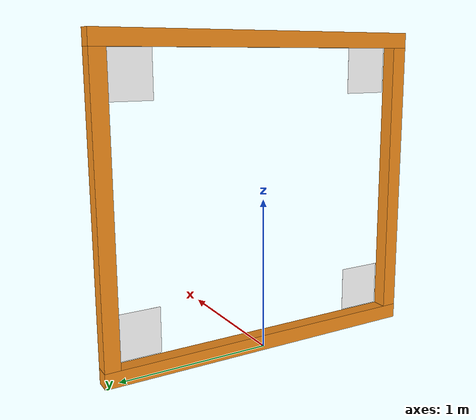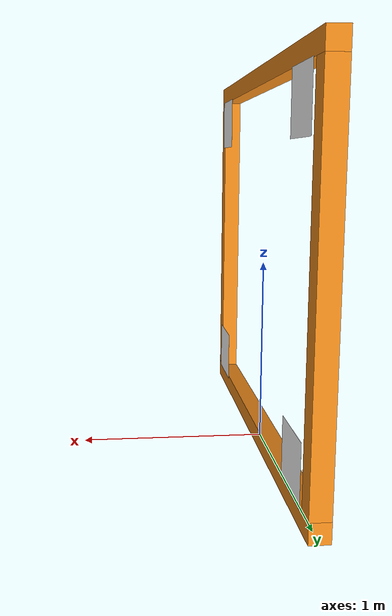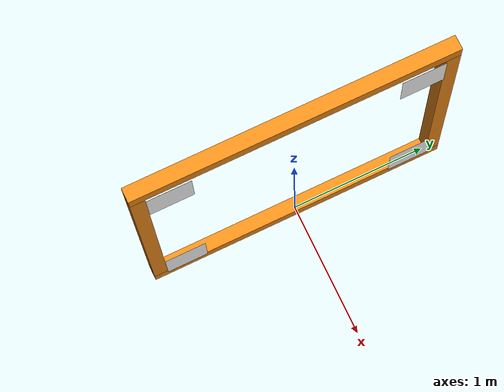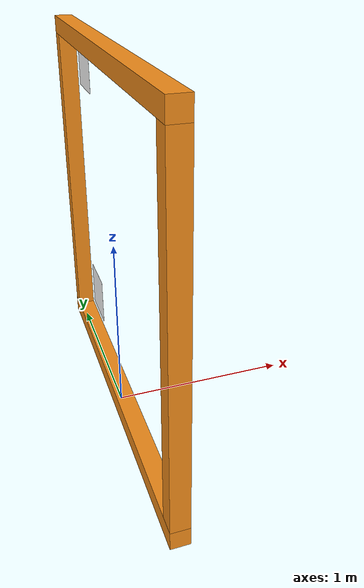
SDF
<?xml version="1.0" ?>
<sdf version="1.9">
<model name="aruco_gate">
<static>true</static>
<link name="link">
<visual name="visual_top">
<pose>0 0 2.0 0 0 0</pose>
<geometry>
<box>
<size>0.1 2.2 0.1</size> </box>
</geometry>
<material>
<script>
<name>Gazebo/Orange</name>
<uri>file://media/materials/scripts/gazebo.material</uri>
</script>
</material>
</visual>
<collision name="collision_top">
<pose>0 0 2.0 0 0 0</pose>
<geometry>
<box><size>0.1 2.2 0.1</size></box>
</geometry>
</collision>

<visual name="visual_bottom">
<pose>0 0 0.05 0 0 0</pose>
<geometry>
<box><size>0.1 2.2 0.1</size></box>
</geometry>
<material>
<script>
<name>Gazebo/Orange</name>
<uri>file://media/materials/scripts/gazebo.material</uri>
</script>
</material>
</visual>
<collision name="collision_bottom">
<pose>0 0 0.05 0 0 0</pose>
<geometry>
<box><size>0.1 2.2 0.1</size></box>
</geometry>
</collision>

<visual name="visual_left">
<pose>0 1.05 1.025 0 0 0</pose>
<geometry>
<box><size>0.1 0.1 1.85</size></box>
</geometry>
<material>
<script>
<name>Gazebo/Orange</name>
<uri>file://media/materials/scripts/gazebo.material</uri>
</script>
</material>
</visual>
<collision name="collision_left">
<pose>0 1.05 1.025 0 0 0</pose>
<geometry>
<box><size>0.1 0.1 1.85</size></box>
</geometry>
</collision>

<visual name="visual_right">
<pose>0 -1.05 1.025 0 0 0</pose>
<geometry>
<box><size>0.1 0.1 1.85</size></box>
</geometry>
<material>
<script>
<name>Gazebo/Orange</name>
<uri>file://media/materials/scripts/gazebo.material</uri>
</script>
</material>
</visual>
<collision name="collision_right">
<pose>0 -1.05 1.025 0 0 0</pose>
<geometry>
<box><size>0.1 0.1 1.85</size></box>
</geometry>
</collision>

<visual name="marker_TL">
<pose>0.06 0.85 1.8 0 -1.57 0</pose>
<geometry>
<plane>
<normal>0 0 1</normal>
<size>0.3 0.3</size>
</plane>
</geometry>
<material>
<diffuse>1 1 1 1</diffuse>
<specular>0.1 0.1 0.1 1</specular>
<double_sided>true</double_sided>
<pbr>
<metal>
<albedo_map>model://aruco_gate/materials/textures/aruco_marker_0.png</albedo_map>
</metal>
</pbr>
</material>
</visual>

<visual name="marker_TR">
<pose>0.06 -0.85 1.8 0 -1.57 0</pose>
<geometry>
<plane>
<normal>0 0 1</normal>
<size>0.3 0.3</size>
</plane>
</geometry>
<material>
<diffuse>1 1 1 1</diffuse>
<specular>0.1 0.1 0.1 1</specular>
<double_sided>true</double_sided>
<pbr>
<metal>
<albedo_map>model://aruco_gate/materials/textures/aruco_marker_1.png</albedo_map>
</metal>
</pbr>
</material>
</visual>

<visual name="marker_BR">
<pose>0.06 -0.85 0.25 0 -1.57 0</pose>
<geometry>
<plane>
<normal>0 0 1</normal>
<size>0.3 0.3</size>
</plane>
</geometry>
<material>
<diffuse>1 1 1 1</diffuse>
<specular>0.1 0.1 0.1 1</specular>
<double_sided>true</double_sided>
<pbr>
<metal>
<albedo_map>model://aruco_gate/materials/textures/aruco_marker_2.png</albedo_map>
</metal>
</pbr>
</material>
</visual>

<visual name="marker_BL">
<pose>0.06 0.85 0.25 0 -1.57 0</pose>
<geometry>
<plane>
<normal>0 0 1</normal>
<size>0.3 0.3</size>
</plane>
</geometry>
<material>
<diffuse>1 1 1 1</diffuse>
<specular>0.1 0.1 0.1 1</specular>
<double_sided>true</double_sided>
<pbr>
<metal>
<albedo_map>model://aruco_gate/materials/textures/aruco_marker_3.png</albedo_map>
</metal>
</pbr>
</material>
</visual>

</link>
</model>
</sdf>
